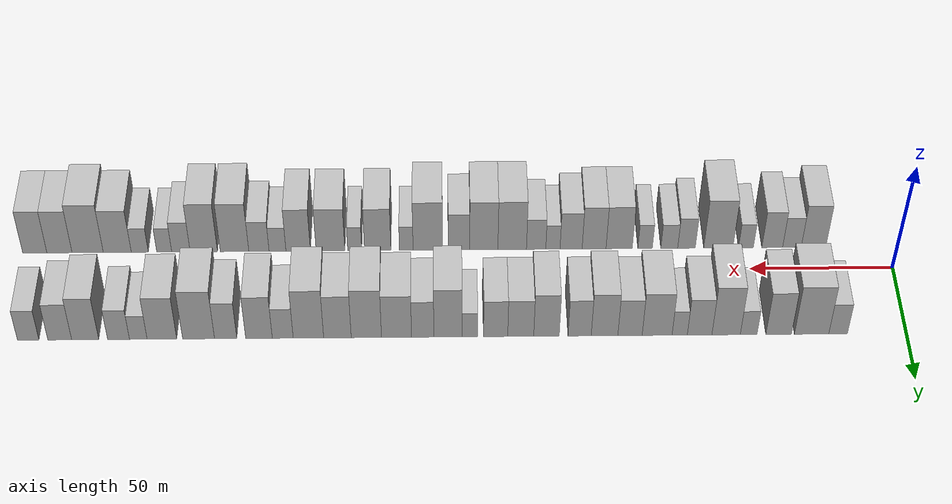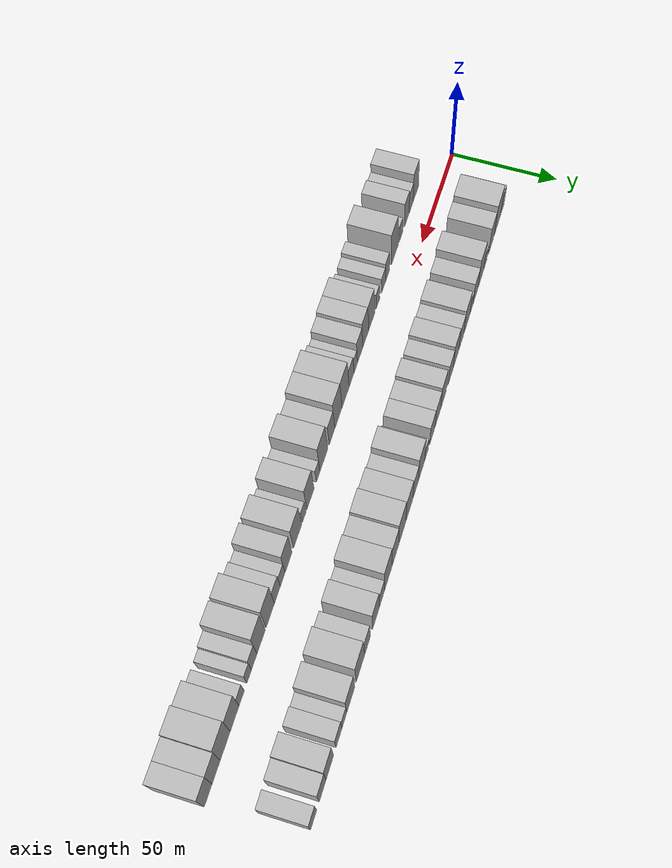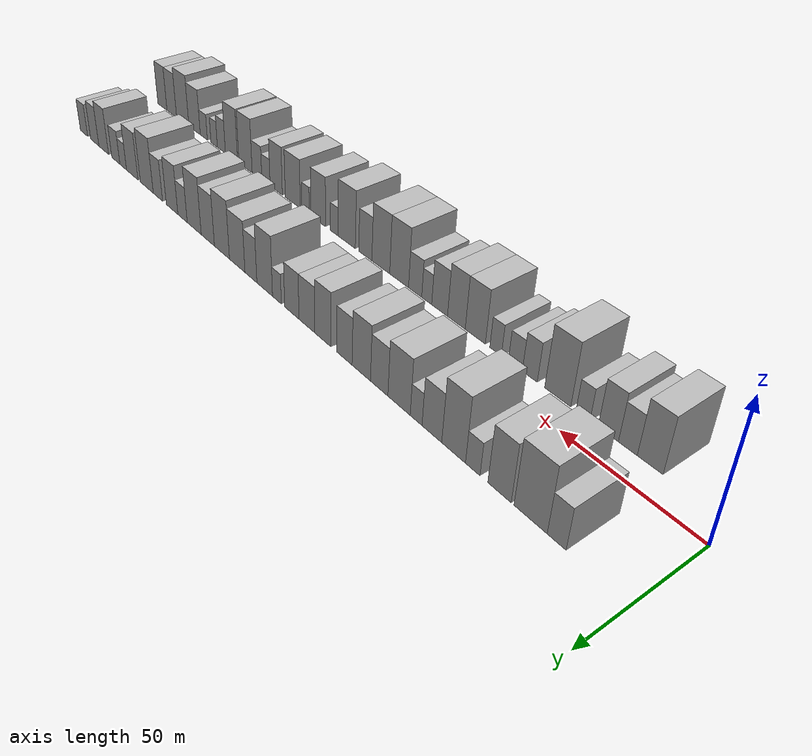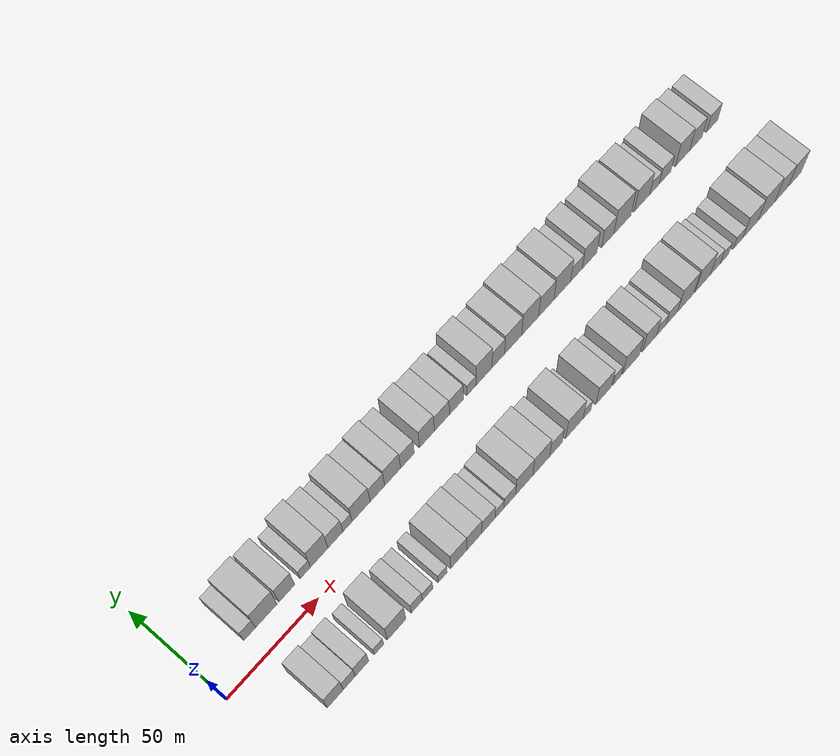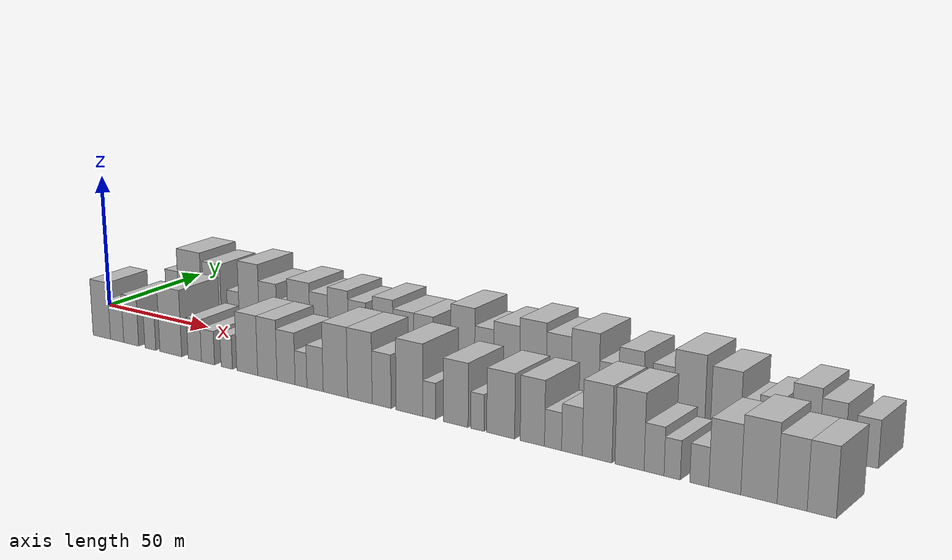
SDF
<sdf version="1.6">
 <world name="default">
  <scene>
   <sky><clouds><speed>12</speed></clouds></sky>
   <ambient>0.4 0.4 0.4 1</ambient>
   <background>0.7 0.7 0.7 1</background>
   <shadows>1</shadows>
  </scene>
  <gravity>0 0 -9.8066</gravity>
  <magnetic_field>6e-06 2.3e-05 -4.2e-05</magnetic_field>
  <physics default="0" name="default_physics" type="ode">
   <ode>
    <solver>
     <type>quick</type>
     <iters>10</iters>
     <sor>1.0</sor>
     <use_dynamic_moi_rescaling>0</use_dynamic_moi_rescaling>
    </solver>
    <constraints>
     <cfm>0</cfm>
     <erp>0.2</erp>
     <contact_max_correcting_vel>100</contact_max_correcting_vel>
     <contact_surface_layer>0.001</contact_surface_layer>
    </constraints>
   </ode>
   <max_step_size>0.004</max_step_size>
   <real_time_factor>1</real_time_factor>
   <real_time_update_rate>250</real_time_update_rate>
  </physics>
  <light name="sun" type="directional">
   <pose>0 0 10 0 0 0</pose>
   <diffuse>0.8 0.8 0.8 1</diffuse>
   <specular>0.2 0.2 0.2 1</specular>
   <attenuation>
    <range>1000</range>
    <constant>0.9</constant>
    <linear>0.01</linear>
    <quadratic>0.001</quadratic>
   </attenuation>
   <direction>-0.5 0.1 -0.9</direction>
  </light>
  <model name="building_1">
   <static>1</static>
   <pose>23.1805 20.0000 0 0.000000 0.000000 1.570796</pose>
   <link name="link">
    <pose>0 0 7.50 0 0 0</pose>
    <collision name="collision"><geometry><box><size>20.0000 6.3611 15.0000</size></box></geometry></collision>
    <visual name="visual">
     <cast_shadows>0</cast_shadows>
     <geometry><box><size>20.0000 6.3611 15.0000</size></box></geometry>
     <material>
      <script>
       <uri>model://HANNAS_wall/materials/scripts</uri>
       <uri>model://HANNAS_wall/materials/textures</uri>
       <name>vrc/HANNAS_wall</name>
      </script>
     </material>
    </visual>
   </link>
  </model>
  <model name="building_2">
   <static>1</static>
   <pose>32.2111 20.0000 0 0.000000 0.000000 1.570796</pose>
   <link name="link">
    <pose>0 0 12.00 0 0 0</pose>
    <collision name="collision"><geometry><box><size>20.0000 11.7001 24.0000</size></box></geometry></collision>
    <visual name="visual">
     <cast_shadows>0</cast_shadows>
     <geometry><box><size>20.0000 11.7001 24.0000</size></box></geometry>
     <material>
      <script>
       <uri>model://HANNAS_wall/materials/scripts</uri>
       <uri>model://HANNAS_wall/materials/textures</uri>
       <name>vrc/HANNAS_wall</name>
      </script>
     </material>
    </visual>
   </link>
  </model>
  <model name="building_3">
   <static>1</static>
   <pose>43.4229 20.0000 0 0.000000 0.000000 1.570796</pose>
   <link name="link">
    <pose>0 0 10.50 0 0 0</pose>
    <collision name="collision"><geometry><box><size>20.0000 8.7235 21.0000</size></box></geometry></collision>
    <visual name="visual">
     <cast_shadows>0</cast_shadows>
     <geometry><box><size>20.0000 8.7235 21.0000</size></box></geometry>
     <material>
      <script>
       <uri>model://HANNAS_wall/materials/scripts</uri>
       <uri>model://HANNAS_wall/materials/textures</uri>
       <name>vrc/HANNAS_wall</name>
      </script>
     </material>
    </visual>
   </link>
  </model>
  <model name="building_4">
   <static>1</static>
   <pose>53.6383 20.0000 0 0.000000 0.000000 1.570796</pose>
   <link name="link">
    <pose>0 0 6.00 0 0 0</pose>
    <collision name="collision"><geometry><box><size>20.0000 5.7074 12.0000</size></box></geometry></collision>
    <visual name="visual">
     <cast_shadows>0</cast_shadows>
     <geometry><box><size>20.0000 5.7074 12.0000</size></box></geometry>
     <material>
      <script>
       <uri>model://HANNAS_wall/materials/scripts</uri>
       <uri>model://HANNAS_wall/materials/textures</uri>
       <name>vrc/HANNAS_wall</name>
      </script>
     </material>
    </visual>
   </link>
  </model>
  <model name="building_5">
   <static>1</static>
   <pose>61.3309 20.0000 0 0.000000 0.000000 1.570796</pose>
   <link name="link">
    <pose>0 0 12.00 0 0 0</pose>
    <collision name="collision"><geometry><box><size>20.0000 9.6777 24.0000</size></box></geometry></collision>
    <visual name="visual">
     <cast_shadows>0</cast_shadows>
     <geometry><box><size>20.0000 9.6777 24.0000</size></box></geometry>
     <material>
      <script>
       <uri>model://HANNAS_wall/materials/scripts</uri>
       <uri>model://HANNAS_wall/materials/textures</uri>
       <name>vrc/HANNAS_wall</name>
      </script>
     </material>
    </visual>
   </link>
  </model>
  <model name="building_6">
   <static>1</static>
   <pose>70.3550 20.0000 0 0.000000 0.000000 1.570796</pose>
   <link name="link">
    <pose>0 0 9.00 0 0 0</pose>
    <collision name="collision"><geometry><box><size>20.0000 8.3705 18.0000</size></box></geometry></collision>
    <visual name="visual">
     <cast_shadows>0</cast_shadows>
     <geometry><box><size>20.0000 8.3705 18.0000</size></box></geometry>
     <material>
      <script>
       <uri>model://HANNAS_wall/materials/scripts</uri>
       <uri>model://HANNAS_wall/materials/textures</uri>
       <name>vrc/HANNAS_wall</name>
      </script>
     </material>
    </visual>
   </link>
  </model>
  <model name="building_7">
   <static>1</static>
   <pose>77.1355 20.0000 0 0.000000 0.000000 1.570796</pose>
   <link name="link">
    <pose>0 0 6.00 0 0 0</pose>
    <collision name="collision"><geometry><box><size>20.0000 5.1903 12.0000</size></box></geometry></collision>
    <visual name="visual">
     <cast_shadows>0</cast_shadows>
     <geometry><box><size>20.0000 5.1903 12.0000</size></box></geometry>
     <material>
      <script>
       <uri>model://HANNAS_wall/materials/scripts</uri>
       <uri>model://HANNAS_wall/materials/textures</uri>
       <name>vrc/HANNAS_wall</name>
      </script>
     </material>
    </visual>
   </link>
  </model>
  <model name="building_8">
   <static>1</static>
   <pose>84.8151 20.0000 0 0.000000 0.000000 1.570796</pose>
   <link name="link">
    <pose>0 0 10.50 0 0 0</pose>
    <collision name="collision"><geometry><box><size>20.0000 10.1690 21.0000</size></box></geometry></collision>
    <visual name="visual">
     <cast_shadows>0</cast_shadows>
     <geometry><box><size>20.0000 10.1690 21.0000</size></box></geometry>
     <material>
      <script>
       <uri>model://HANNAS_wall/materials/scripts</uri>
       <uri>model://HANNAS_wall/materials/textures</uri>
       <name>vrc/HANNAS_wall</name>
      </script>
     </material>
    </visual>
   </link>
  </model>
  <model name="building_9">
   <static>1</static>
   <pose>94.0329 20.0000 0 0.000000 0.000000 1.570796</pose>
   <link name="link">
    <pose>0 0 9.00 0 0 0</pose>
    <collision name="collision"><geometry><box><size>20.0000 8.2667 18.0000</size></box></geometry></collision>
    <visual name="visual">
     <cast_shadows>0</cast_shadows>
     <geometry><box><size>20.0000 8.2667 18.0000</size></box></geometry>
     <material>
      <script>
       <uri>model://HANNAS_wall/materials/scripts</uri>
       <uri>model://HANNAS_wall/materials/textures</uri>
       <name>vrc/HANNAS_wall</name>
      </script>
     </material>
    </visual>
   </link>
  </model>
  <model name="building_10">
   <static>1</static>
   <pose>102.6994 20.0000 0 0.000000 0.000000 1.570796</pose>
   <link name="link">
    <pose>0 0 10.50 0 0 0</pose>
    <collision name="collision"><geometry><box><size>20.0000 9.0662 21.0000</size></box></geometry></collision>
    <visual name="visual">
     <cast_shadows>0</cast_shadows>
     <geometry><box><size>20.0000 9.0662 21.0000</size></box></geometry>
     <material>
      <script>
       <uri>model://HANNAS_wall/materials/scripts</uri>
       <uri>model://HANNAS_wall/materials/textures</uri>
       <name>vrc/HANNAS_wall</name>
      </script>
     </material>
    </visual>
   </link>
  </model>
  <model name="building_11">
   <static>1</static>
   <pose>111.1695 20.0000 0 0.000000 0.000000 1.570796</pose>
   <link name="link">
    <pose>0 0 9.00 0 0 0</pose>
    <collision name="collision"><geometry><box><size>20.0000 7.8741 18.0000</size></box></geometry></collision>
    <visual name="visual">
     <cast_shadows>0</cast_shadows>
     <geometry><box><size>20.0000 7.8741 18.0000</size></box></geometry>
     <material>
      <script>
       <uri>model://HANNAS_wall/materials/scripts</uri>
       <uri>model://HANNAS_wall/materials/textures</uri>
       <name>vrc/HANNAS_wall</name>
      </script>
     </material>
    </visual>
   </link>
  </model>
  <model name="building_12">
   <static>1</static>
   <pose>122.4387 20.0000 0 0.000000 0.000000 1.570796</pose>
   <link name="link">
    <pose>0 0 10.50 0 0 0</pose>
    <collision name="collision"><geometry><box><size>20.0000 8.6643 21.0000</size></box></geometry></collision>
    <visual name="visual">
     <cast_shadows>0</cast_shadows>
     <geometry><box><size>20.0000 8.6643 21.0000</size></box></geometry>
     <material>
      <script>
       <uri>model://HANNAS_wall/materials/scripts</uri>
       <uri>model://HANNAS_wall/materials/textures</uri>
       <name>vrc/HANNAS_wall</name>
      </script>
     </material>
    </visual>
   </link>
  </model>
  <model name="building_13">
   <static>1</static>
   <pose>131.1931 20.0000 0 0.000000 0.000000 1.570796</pose>
   <link name="link">
    <pose>0 0 9.00 0 0 0</pose>
    <collision name="collision"><geometry><box><size>20.0000 8.8445 18.0000</size></box></geometry></collision>
    <visual name="visual">
     <cast_shadows>0</cast_shadows>
     <geometry><box><size>20.0000 8.8445 18.0000</size></box></geometry>
     <material>
      <script>
       <uri>model://HANNAS_wall/materials/scripts</uri>
       <uri>model://HANNAS_wall/materials/textures</uri>
       <name>vrc/HANNAS_wall</name>
      </script>
     </material>
    </visual>
   </link>
  </model>
  <model name="building_14">
   <static>1</static>
   <pose>139.7270 20.0000 0 0.000000 0.000000 1.570796</pose>
   <link name="link">
    <pose>0 0 9.00 0 0 0</pose>
    <collision name="collision"><geometry><box><size>20.0000 8.2233 18.0000</size></box></geometry></collision>
    <visual name="visual">
     <cast_shadows>0</cast_shadows>
     <geometry><box><size>20.0000 8.2233 18.0000</size></box></geometry>
     <material>
      <script>
       <uri>model://HANNAS_wall/materials/scripts</uri>
       <uri>model://HANNAS_wall/materials/textures</uri>
       <name>vrc/HANNAS_wall</name>
      </script>
     </material>
    </visual>
   </link>
  </model>
  <model name="building_15">
   <static>1</static>
   <pose>148.4612 20.0000 0 0.000000 0.000000 1.570796</pose>
   <link name="link">
    <pose>0 0 6.00 0 0 0</pose>
    <collision name="collision"><geometry><box><size>20.0000 5.2451 12.0000</size></box></geometry></collision>
    <visual name="visual">
     <cast_shadows>0</cast_shadows>
     <geometry><box><size>20.0000 5.2451 12.0000</size></box></geometry>
     <material>
      <script>
       <uri>model://HANNAS_wall/materials/scripts</uri>
       <uri>model://HANNAS_wall/materials/textures</uri>
       <name>vrc/HANNAS_wall</name>
      </script>
     </material>
    </visual>
   </link>
  </model>
  <model name="building_16">
   <static>1</static>
   <pose>155.8896 20.0000 0 0.000000 0.000000 1.570796</pose>
   <link name="link">
    <pose>0 0 12.00 0 0 0</pose>
    <collision name="collision"><geometry><box><size>20.0000 9.6118 24.0000</size></box></geometry></collision>
    <visual name="visual">
     <cast_shadows>0</cast_shadows>
     <geometry><box><size>20.0000 9.6118 24.0000</size></box></geometry>
     <material>
      <script>
       <uri>model://HANNAS_wall/materials/scripts</uri>
       <uri>model://HANNAS_wall/materials/textures</uri>
       <name>vrc/HANNAS_wall</name>
      </script>
     </material>
    </visual>
   </link>
  </model>
  <model name="building_17">
   <static>1</static>
   <pose>164.4881 20.0000 0 0.000000 0.000000 1.570796</pose>
   <link name="link">
    <pose>0 0 9.00 0 0 0</pose>
    <collision name="collision"><geometry><box><size>20.0000 7.5852 18.0000</size></box></geometry></collision>
    <visual name="visual">
     <cast_shadows>0</cast_shadows>
     <geometry><box><size>20.0000 7.5852 18.0000</size></box></geometry>
     <material>
      <script>
       <uri>model://HANNAS_wall/materials/scripts</uri>
       <uri>model://HANNAS_wall/materials/textures</uri>
       <name>vrc/HANNAS_wall</name>
      </script>
     </material>
    </visual>
   </link>
  </model>
  <model name="building_18">
   <static>1</static>
   <pose>173.3869 20.0000 0 0.000000 0.000000 1.570796</pose>
   <link name="link">
    <pose>0 0 10.50 0 0 0</pose>
    <collision name="collision"><geometry><box><size>20.0000 10.2125 21.0000</size></box></geometry></collision>
    <visual name="visual">
     <cast_shadows>0</cast_shadows>
     <geometry><box><size>20.0000 10.2125 21.0000</size></box></geometry>
     <material>
      <script>
       <uri>model://HANNAS_wall/materials/scripts</uri>
       <uri>model://HANNAS_wall/materials/textures</uri>
       <name>vrc/HANNAS_wall</name>
      </script>
     </material>
    </visual>
   </link>
  </model>
  <model name="building_19">
   <static>1</static>
   <pose>183.6347 20.0000 0 0.000000 0.000000 1.570796</pose>
   <link name="link">
    <pose>0 0 12.00 0 0 0</pose>
    <collision name="collision"><geometry><box><size>20.0000 10.2831 24.0000</size></box></geometry></collision>
    <visual name="visual">
     <cast_shadows>0</cast_shadows>
     <geometry><box><size>20.0000 10.2831 24.0000</size></box></geometry>
     <material>
      <script>
       <uri>model://HANNAS_wall/materials/scripts</uri>
       <uri>model://HANNAS_wall/materials/textures</uri>
       <name>vrc/HANNAS_wall</name>
      </script>
     </material>
    </visual>
   </link>
  </model>
  <model name="building_20">
   <static>1</static>
   <pose>193.4591 20.0000 0 0.000000 0.000000 1.570796</pose>
   <link name="link">
    <pose>0 0 10.50 0 0 0</pose>
    <collision name="collision"><geometry><box><size>20.0000 9.3656 21.0000</size></box></geometry></collision>
    <visual name="visual">
     <cast_shadows>0</cast_shadows>
     <geometry><box><size>20.0000 9.3656 21.0000</size></box></geometry>
     <material>
      <script>
       <uri>model://HANNAS_wall/materials/scripts</uri>
       <uri>model://HANNAS_wall/materials/textures</uri>
       <name>vrc/HANNAS_wall</name>
      </script>
     </material>
    </visual>
   </link>
  </model>
  <model name="building_21">
   <static>1</static>
   <pose>203.3100 20.0000 0 0.000000 0.000000 1.570796</pose>
   <link name="link">
    <pose>0 0 12.00 0 0 0</pose>
    <collision name="collision"><geometry><box><size>20.0000 10.3362 24.0000</size></box></geometry></collision>
    <visual name="visual">
     <cast_shadows>0</cast_shadows>
     <geometry><box><size>20.0000 10.3362 24.0000</size></box></geometry>
     <material>
      <script>
       <uri>model://HANNAS_wall/materials/scripts</uri>
       <uri>model://HANNAS_wall/materials/textures</uri>
       <name>vrc/HANNAS_wall</name>
      </script>
     </material>
    </visual>
   </link>
  </model>
  <model name="building_22">
   <static>1</static>
   <pose>212.0211 20.0000 0 0.000000 0.000000 1.570796</pose>
   <link name="link">
    <pose>0 0 7.50 0 0 0</pose>
    <collision name="collision"><geometry><box><size>20.0000 7.0859 15.0000</size></box></geometry></collision>
    <visual name="visual">
     <cast_shadows>0</cast_shadows>
     <geometry><box><size>20.0000 7.0859 15.0000</size></box></geometry>
     <material>
      <script>
       <uri>model://HANNAS_wall/materials/scripts</uri>
       <uri>model://HANNAS_wall/materials/textures</uri>
       <name>vrc/HANNAS_wall</name>
      </script>
     </material>
    </visual>
   </link>
  </model>
  <model name="building_23">
   <static>1</static>
   <pose>220.0758 20.0000 0 0.000000 0.000000 1.570796</pose>
   <link name="link">
    <pose>0 0 10.50 0 0 0</pose>
    <collision name="collision"><geometry><box><size>20.0000 9.0235 21.0000</size></box></geometry></collision>
    <visual name="visual">
     <cast_shadows>0</cast_shadows>
     <geometry><box><size>20.0000 9.0235 21.0000</size></box></geometry>
     <material>
      <script>
       <uri>model://HANNAS_wall/materials/scripts</uri>
       <uri>model://HANNAS_wall/materials/textures</uri>
       <name>vrc/HANNAS_wall</name>
      </script>
     </material>
    </visual>
   </link>
  </model>
  <model name="building_24">
   <static>1</static>
   <pose>231.3806 20.0000 0 0.000000 0.000000 1.570796</pose>
   <link name="link">
    <pose>0 0 9.00 0 0 0</pose>
    <collision name="collision"><geometry><box><size>20.0000 7.5862 18.0000</size></box></geometry></collision>
    <visual name="visual">
     <cast_shadows>0</cast_shadows>
     <geometry><box><size>20.0000 7.5862 18.0000</size></box></geometry>
     <material>
      <script>
       <uri>model://HANNAS_wall/materials/scripts</uri>
       <uri>model://HANNAS_wall/materials/textures</uri>
       <name>vrc/HANNAS_wall</name>
      </script>
     </material>
    </visual>
   </link>
  </model>
  <model name="building_25">
   <static>1</static>
   <pose>240.5744 20.0000 0 0.000000 0.000000 1.570796</pose>
   <link name="link">
    <pose>0 0 12.00 0 0 0</pose>
    <collision name="collision"><geometry><box><size>20.0000 10.8014 24.0000</size></box></geometry></collision>
    <visual name="visual">
     <cast_shadows>0</cast_shadows>
     <geometry><box><size>20.0000 10.8014 24.0000</size></box></geometry>
     <material>
      <script>
       <uri>model://HANNAS_wall/materials/scripts</uri>
       <uri>model://HANNAS_wall/materials/textures</uri>
       <name>vrc/HANNAS_wall</name>
      </script>
     </material>
    </visual>
   </link>
  </model>
  <model name="building_26">
   <static>1</static>
   <pose>252.9992 20.0000 0 0.000000 0.000000 1.570796</pose>
   <link name="link">
    <pose>0 0 10.50 0 0 0</pose>
    <collision name="collision"><geometry><box><size>20.0000 10.0482 21.0000</size></box></geometry></collision>
    <visual name="visual">
     <cast_shadows>0</cast_shadows>
     <geometry><box><size>20.0000 10.0482 21.0000</size></box></geometry>
     <material>
      <script>
       <uri>model://HANNAS_wall/materials/scripts</uri>
       <uri>model://HANNAS_wall/materials/textures</uri>
       <name>vrc/HANNAS_wall</name>
      </script>
     </material>
    </visual>
   </link>
  </model>
  <model name="building_27">
   <static>1</static>
   <pose>261.0181 20.0000 0 0.000000 0.000000 1.570796</pose>
   <link name="link">
    <pose>0 0 6.00 0 0 0</pose>
    <collision name="collision"><geometry><box><size>20.0000 5.9895 12.0000</size></box></geometry></collision>
    <visual name="visual">
     <cast_shadows>0</cast_shadows>
     <geometry><box><size>20.0000 5.9895 12.0000</size></box></geometry>
     <material>
      <script>
       <uri>model://HANNAS_wall/materials/scripts</uri>
       <uri>model://HANNAS_wall/materials/textures</uri>
       <name>vrc/HANNAS_wall</name>
      </script>
     </material>
    </visual>
   </link>
  </model>
  <model name="building_28">
   <static>1</static>
   <pose>267.7192 20.0000 0 0.000000 0.000000 1.570796</pose>
   <link name="link">
    <pose>0 0 7.50 0 0 0</pose>
    <collision name="collision"><geometry><box><size>20.0000 7.4128 15.0000</size></box></geometry></collision>
    <visual name="visual">
     <cast_shadows>0</cast_shadows>
     <geometry><box><size>20.0000 7.4128 15.0000</size></box></geometry>
     <material>
      <script>
       <uri>model://HANNAS_wall/materials/scripts</uri>
       <uri>model://HANNAS_wall/materials/textures</uri>
       <name>vrc/HANNAS_wall</name>
      </script>
     </material>
    </visual>
   </link>
  </model>
  <model name="building_29">
   <static>1</static>
   <pose>279.0179 20.0000 0 0.000000 0.000000 1.570796</pose>
   <link name="link">
    <pose>0 0 10.50 0 0 0</pose>
    <collision name="collision"><geometry><box><size>20.0000 9.1847 21.0000</size></box></geometry></collision>
    <visual name="visual">
     <cast_shadows>0</cast_shadows>
     <geometry><box><size>20.0000 9.1847 21.0000</size></box></geometry>
     <material>
      <script>
       <uri>model://HANNAS_wall/materials/scripts</uri>
       <uri>model://HANNAS_wall/materials/textures</uri>
       <name>vrc/HANNAS_wall</name>
      </script>
     </material>
    </visual>
   </link>
  </model>
  <model name="building_30">
   <static>1</static>
   <pose>287.6468 20.0000 0 0.000000 0.000000 1.570796</pose>
   <link name="link">
    <pose>0 0 9.00 0 0 0</pose>
    <collision name="collision"><geometry><box><size>20.0000 8.0731 18.0000</size></box></geometry></collision>
    <visual name="visual">
     <cast_shadows>0</cast_shadows>
     <geometry><box><size>20.0000 8.0731 18.0000</size></box></geometry>
     <material>
      <script>
       <uri>model://HANNAS_wall/materials/scripts</uri>
       <uri>model://HANNAS_wall/materials/textures</uri>
       <name>vrc/HANNAS_wall</name>
      </script>
     </material>
    </visual>
   </link>
  </model>
  <model name="building_31">
   <static>1</static>
   <pose>298.3227 20.0000 0 0.000000 0.000000 1.570796</pose>
   <link name="link">
    <pose>0 0 7.50 0 0 0</pose>
    <collision name="collision"><geometry><box><size>20.0000 7.2786 15.0000</size></box></geometry></collision>
    <visual name="visual">
     <cast_shadows>0</cast_shadows>
     <geometry><box><size>20.0000 7.2786 15.0000</size></box></geometry>
     <material>
      <script>
       <uri>model://HANNAS_wall/materials/scripts</uri>
       <uri>model://HANNAS_wall/materials/textures</uri>
       <name>vrc/HANNAS_wall</name>
      </script>
     </material>
    </visual>
   </link>
  </model>
  <model name="building_32">
   <static>1</static>
   <pose>26.3560 -20.0000 0 0.000000 0.000000 1.570796</pose>
   <link name="link">
    <pose>0 0 10.50 0 0 0</pose>
    <collision name="collision"><geometry><box><size>20.0000 8.7120 21.0000</size></box></geometry></collision>
    <visual name="visual">
     <cast_shadows>0</cast_shadows>
     <geometry><box><size>20.0000 8.7120 21.0000</size></box></geometry>
     <material>
      <script>
       <uri>model://HANNAS_wall/materials/scripts</uri>
       <uri>model://HANNAS_wall/materials/textures</uri>
       <name>vrc/HANNAS_wall</name>
      </script>
     </material>
    </visual>
   </link>
  </model>
  <model name="building_33">
   <static>1</static>
   <pose>34.0038 -20.0000 0 0.000000 0.000000 1.570796</pose>
   <link name="link">
    <pose>0 0 7.50 0 0 0</pose>
    <collision name="collision"><geometry><box><size>20.0000 6.5835 15.0000</size></box></geometry></collision>
    <visual name="visual">
     <cast_shadows>0</cast_shadows>
     <geometry><box><size>20.0000 6.5835 15.0000</size></box></geometry>
     <material>
      <script>
       <uri>model://HANNAS_wall/materials/scripts</uri>
       <uri>model://HANNAS_wall/materials/textures</uri>
       <name>vrc/HANNAS_wall</name>
      </script>
     </material>
    </visual>
   </link>
  </model>
  <model name="building_34">
   <static>1</static>
   <pose>40.9746 -20.0000 0 0.000000 0.000000 1.570796</pose>
   <link name="link">
    <pose>0 0 9.00 0 0 0</pose>
    <collision name="collision"><geometry><box><size>20.0000 7.3580 18.0000</size></box></geometry></collision>
    <visual name="visual">
     <cast_shadows>0</cast_shadows>
     <geometry><box><size>20.0000 7.3580 18.0000</size></box></geometry>
     <material>
      <script>
       <uri>model://HANNAS_wall/materials/scripts</uri>
       <uri>model://HANNAS_wall/materials/textures</uri>
       <name>vrc/HANNAS_wall</name>
      </script>
     </material>
    </visual>
   </link>
  </model>
  <model name="building_35">
   <static>1</static>
   <pose>50.2781 -20.0000 0 0.000000 0.000000 1.570796</pose>
   <link name="link">
    <pose>0 0 6.00 0 0 0</pose>
    <collision name="collision"><geometry><box><size>20.0000 5.2490 12.0000</size></box></geometry></collision>
    <visual name="visual">
     <cast_shadows>0</cast_shadows>
     <geometry><box><size>20.0000 5.2490 12.0000</size></box></geometry>
     <material>
      <script>
       <uri>model://HANNAS_wall/materials/scripts</uri>
       <uri>model://HANNAS_wall/materials/textures</uri>
       <name>vrc/HANNAS_wall</name>
      </script>
     </material>
    </visual>
   </link>
  </model>
  <model name="building_36">
   <static>1</static>
   <pose>60.0614 -20.0000 0 0.000000 0.000000 1.570796</pose>
   <link name="link">
    <pose>0 0 12.00 0 0 0</pose>
    <collision name="collision"><geometry><box><size>20.0000 10.3177 24.0000</size></box></geometry></collision>
    <visual name="visual">
     <cast_shadows>0</cast_shadows>
     <geometry><box><size>20.0000 10.3177 24.0000</size></box></geometry>
     <material>
      <script>
       <uri>model://HANNAS_wall/materials/scripts</uri>
       <uri>model://HANNAS_wall/materials/textures</uri>
       <name>vrc/HANNAS_wall</name>
      </script>
     </material>
    </visual>
   </link>
  </model>
  <model name="building_37">
   <static>1</static>
   <pose>71.3219 -20.0000 0 0.000000 0.000000 1.570796</pose>
   <link name="link">
    <pose>0 0 7.50 0 0 0</pose>
    <collision name="collision"><geometry><box><size>20.0000 6.2032 15.0000</size></box></geometry></collision>
    <visual name="visual">
     <cast_shadows>0</cast_shadows>
     <geometry><box><size>20.0000 6.2032 15.0000</size></box></geometry>
     <material>
      <script>
       <uri>model://HANNAS_wall/materials/scripts</uri>
       <uri>model://HANNAS_wall/materials/textures</uri>
       <name>vrc/HANNAS_wall</name>
      </script>
     </material>
    </visual>
   </link>
  </model>
  <model name="building_38">
   <static>1</static>
   <pose>77.4113 -20.0000 0 0.000000 0.000000 1.570796</pose>
   <link name="link">
    <pose>0 0 6.00 0 0 0</pose>
    <collision name="collision"><geometry><box><size>20.0000 5.9757 12.0000</size></box></geometry></collision>
    <visual name="visual">
     <cast_shadows>0</cast_shadows>
     <geometry><box><size>20.0000 5.9757 12.0000</size></box></geometry>
     <material>
      <script>
       <uri>model://HANNAS_wall/materials/scripts</uri>
       <uri>model://HANNAS_wall/materials/textures</uri>
       <name>vrc/HANNAS_wall</name>
      </script>
     </material>
    </visual>
   </link>
  </model>
  <model name="building_39">
   <static>1</static>
   <pose>85.9588 -20.0000 0 0.000000 0.000000 1.570796</pose>
   <link name="link">
    <pose>0 0 6.00 0 0 0</pose>
    <collision name="collision"><geometry><box><size>20.0000 5.1192 12.0000</size></box></geometry></collision>
    <visual name="visual">
     <cast_shadows>0</cast_shadows>
     <geometry><box><size>20.0000 5.1192 12.0000</size></box></geometry>
     <material>
      <script>
       <uri>model://HANNAS_wall/materials/scripts</uri>
       <uri>model://HANNAS_wall/materials/textures</uri>
       <name>vrc/HANNAS_wall</name>
      </script>
     </material>
    </visual>
   </link>
  </model>
  <model name="building_40">
   <static>1</static>
   <pose>95.1496 -20.0000 0 0.000000 0.000000 1.570796</pose>
   <link name="link">
    <pose>0 0 10.50 0 0 0</pose>
    <collision name="collision"><geometry><box><size>20.0000 9.2623 21.0000</size></box></geometry></collision>
    <visual name="visual">
     <cast_shadows>0</cast_shadows>
     <geometry><box><size>20.0000 9.2623 21.0000</size></box></geometry>
     <material>
      <script>
       <uri>model://HANNAS_wall/materials/scripts</uri>
       <uri>model://HANNAS_wall/materials/textures</uri>
       <name>vrc/HANNAS_wall</name>
      </script>
     </material>
    </visual>
   </link>
  </model>
  <model name="building_41">
   <static>1</static>
   <pose>104.0091 -20.0000 0 0.000000 0.000000 1.570796</pose>
   <link name="link">
    <pose>0 0 10.50 0 0 0</pose>
    <collision name="collision"><geometry><box><size>20.0000 8.4568 21.0000</size></box></geometry></collision>
    <visual name="visual">
     <cast_shadows>0</cast_shadows>
     <geometry><box><size>20.0000 8.4568 21.0000</size></box></geometry>
     <material>
      <script>
       <uri>model://HANNAS_wall/materials/scripts</uri>
       <uri>model://HANNAS_wall/materials/textures</uri>
       <name>vrc/HANNAS_wall</name>
      </script>
     </material>
    </visual>
   </link>
  </model>
  <model name="building_42">
   <static>1</static>
   <pose>112.1388 -20.0000 0 0.000000 0.000000 1.570796</pose>
   <link name="link">
    <pose>0 0 9.00 0 0 0</pose>
    <collision name="collision"><geometry><box><size>20.0000 7.8025 18.0000</size></box></geometry></collision>
    <visual name="visual">
     <cast_shadows>0</cast_shadows>
     <geometry><box><size>20.0000 7.8025 18.0000</size></box></geometry>
     <material>
      <script>
       <uri>model://HANNAS_wall/materials/scripts</uri>
       <uri>model://HANNAS_wall/materials/textures</uri>
       <name>vrc/HANNAS_wall</name>
      </script>
     </material>
    </visual>
   </link>
  </model>
  <model name="building_43">
   <static>1</static>
   <pose>118.5573 -20.0000 0 0.000000 0.000000 1.570796</pose>
   <link name="link">
    <pose>0 0 6.00 0 0 0</pose>
    <collision name="collision"><geometry><box><size>20.0000 5.0346 12.0000</size></box></geometry></collision>
    <visual name="visual">
     <cast_shadows>0</cast_shadows>
     <geometry><box><size>20.0000 5.0346 12.0000</size></box></geometry>
     <material>
      <script>
       <uri>model://HANNAS_wall/materials/scripts</uri>
       <uri>model://HANNAS_wall/materials/textures</uri>
       <name>vrc/HANNAS_wall</name>
      </script>
     </material>
    </visual>
   </link>
  </model>
  <model name="building_44">
   <static>1</static>
   <pose>124.4892 -20.0000 0 0.000000 0.000000 1.570796</pose>
   <link name="link">
    <pose>0 0 7.50 0 0 0</pose>
    <collision name="collision"><geometry><box><size>20.0000 6.8292 15.0000</size></box></geometry></collision>
    <visual name="visual">
     <cast_shadows>0</cast_shadows>
     <geometry><box><size>20.0000 6.8292 15.0000</size></box></geometry>
     <material>
      <script>
       <uri>model://HANNAS_wall/materials/scripts</uri>
       <uri>model://HANNAS_wall/materials/textures</uri>
       <name>vrc/HANNAS_wall</name>
      </script>
     </material>
    </visual>
   </link>
  </model>
  <model name="building_45">
   <static>1</static>
   <pose>132.9572 -20.0000 0 0.000000 0.000000 1.570796</pose>
   <link name="link">
    <pose>0 0 12.00 0 0 0</pose>
    <collision name="collision"><geometry><box><size>20.0000 10.1069 24.0000</size></box></geometry></collision>
    <visual name="visual">
     <cast_shadows>0</cast_shadows>
     <geometry><box><size>20.0000 10.1069 24.0000</size></box></geometry>
     <material>
      <script>
       <uri>model://HANNAS_wall/materials/scripts</uri>
       <uri>model://HANNAS_wall/materials/textures</uri>
       <name>vrc/HANNAS_wall</name>
      </script>
     </material>
    </visual>
   </link>
  </model>
  <model name="building_46">
   <static>1</static>
   <pose>142.9940 -20.0000 0 0.000000 0.000000 1.570796</pose>
   <link name="link">
    <pose>0 0 12.00 0 0 0</pose>
    <collision name="collision"><geometry><box><size>20.0000 9.9667 24.0000</size></box></geometry></collision>
    <visual name="visual">
     <cast_shadows>0</cast_shadows>
     <geometry><box><size>20.0000 9.9667 24.0000</size></box></geometry>
     <material>
      <script>
       <uri>model://HANNAS_wall/materials/scripts</uri>
       <uri>model://HANNAS_wall/materials/textures</uri>
       <name>vrc/HANNAS_wall</name>
      </script>
     </material>
    </visual>
   </link>
  </model>
  <model name="building_47">
   <static>1</static>
   <pose>151.7544 -20.0000 0 0.000000 0.000000 1.570796</pose>
   <link name="link">
    <pose>0 0 9.00 0 0 0</pose>
    <collision name="collision"><geometry><box><size>20.0000 7.5540 18.0000</size></box></geometry></collision>
    <visual name="visual">
     <cast_shadows>0</cast_shadows>
     <geometry><box><size>20.0000 7.5540 18.0000</size></box></geometry>
     <material>
      <script>
       <uri>model://HANNAS_wall/materials/scripts</uri>
       <uri>model://HANNAS_wall/materials/textures</uri>
       <name>vrc/HANNAS_wall</name>
      </script>
     </material>
    </visual>
   </link>
  </model>
  <model name="building_48">
   <static>1</static>
   <pose>162.7396 -20.0000 0 0.000000 0.000000 1.570796</pose>
   <link name="link">
    <pose>0 0 12.00 0 0 0</pose>
    <collision name="collision"><geometry><box><size>20.0000 10.4164 24.0000</size></box></geometry></collision>
    <visual name="visual">
     <cast_shadows>0</cast_shadows>
     <geometry><box><size>20.0000 10.4164 24.0000</size></box></geometry>
     <material>
      <script>
       <uri>model://HANNAS_wall/materials/scripts</uri>
       <uri>model://HANNAS_wall/materials/textures</uri>
       <name>vrc/HANNAS_wall</name>
      </script>
     </material>
    </visual>
   </link>
  </model>
  <model name="building_49">
   <static>1</static>
   <pose>170.3561 -20.0000 0 0.000000 0.000000 1.570796</pose>
   <link name="link">
    <pose>0 0 6.00 0 0 0</pose>
    <collision name="collision"><geometry><box><size>20.0000 4.8167 12.0000</size></box></geometry></collision>
    <visual name="visual">
     <cast_shadows>0</cast_shadows>
     <geometry><box><size>20.0000 4.8167 12.0000</size></box></geometry>
     <material>
      <script>
       <uri>model://HANNAS_wall/materials/scripts</uri>
       <uri>model://HANNAS_wall/materials/textures</uri>
       <name>vrc/HANNAS_wall</name>
      </script>
     </material>
    </visual>
   </link>
  </model>
  <model name="building_50">
   <static>1</static>
   <pose>180.4227 -20.0000 0 0.000000 0.000000 1.570796</pose>
   <link name="link">
    <pose>0 0 10.50 0 0 0</pose>
    <collision name="collision"><geometry><box><size>20.0000 9.3164 21.0000</size></box></geometry></collision>
    <visual name="visual">
     <cast_shadows>0</cast_shadows>
     <geometry><box><size>20.0000 9.3164 21.0000</size></box></geometry>
     <material>
      <script>
       <uri>model://HANNAS_wall/materials/scripts</uri>
       <uri>model://HANNAS_wall/materials/textures</uri>
       <name>vrc/HANNAS_wall</name>
      </script>
     </material>
    </visual>
   </link>
  </model>
  <model name="building_51">
   <static>1</static>
   <pose>188.5477 -20.0000 0 0.000000 0.000000 1.570796</pose>
   <link name="link">
    <pose>0 0 6.00 0 0 0</pose>
    <collision name="collision"><geometry><box><size>20.0000 4.9336 12.0000</size></box></geometry></collision>
    <visual name="visual">
     <cast_shadows>0</cast_shadows>
     <geometry><box><size>20.0000 4.9336 12.0000</size></box></geometry>
     <material>
      <script>
       <uri>model://HANNAS_wall/materials/scripts</uri>
       <uri>model://HANNAS_wall/materials/textures</uri>
       <name>vrc/HANNAS_wall</name>
      </script>
     </material>
    </visual>
   </link>
  </model>
  <model name="building_52">
   <static>1</static>
   <pose>197.0905 -20.0000 0 0.000000 0.000000 1.570796</pose>
   <link name="link">
    <pose>0 0 10.50 0 0 0</pose>
    <collision name="collision"><geometry><box><size>20.0000 10.1520 21.0000</size></box></geometry></collision>
    <visual name="visual">
     <cast_shadows>0</cast_shadows>
     <geometry><box><size>20.0000 10.1520 21.0000</size></box></geometry>
     <material>
      <script>
       <uri>model://HANNAS_wall/materials/scripts</uri>
       <uri>model://HANNAS_wall/materials/textures</uri>
       <name>vrc/HANNAS_wall</name>
      </script>
     </material>
    </visual>
   </link>
  </model>
  <model name="building_53">
   <static>1</static>
   <pose>208.4896 -20.0000 0 0.000000 0.000000 1.570796</pose>
   <link name="link">
    <pose>0 0 10.50 0 0 0</pose>
    <collision name="collision"><geometry><box><size>20.0000 8.6462 21.0000</size></box></geometry></collision>
    <visual name="visual">
     <cast_shadows>0</cast_shadows>
     <geometry><box><size>20.0000 8.6462 21.0000</size></box></geometry>
     <material>
      <script>
       <uri>model://HANNAS_wall/materials/scripts</uri>
       <uri>model://HANNAS_wall/materials/textures</uri>
       <name>vrc/HANNAS_wall</name>
      </script>
     </material>
    </visual>
   </link>
  </model>
  <model name="building_54">
   <static>1</static>
   <pose>215.7920 -20.0000 0 0.000000 0.000000 1.570796</pose>
   <link name="link">
    <pose>0 0 6.00 0 0 0</pose>
    <collision name="collision"><geometry><box><size>20.0000 5.9585 12.0000</size></box></geometry></collision>
    <visual name="visual">
     <cast_shadows>0</cast_shadows>
     <geometry><box><size>20.0000 5.9585 12.0000</size></box></geometry>
     <material>
      <script>
       <uri>model://HANNAS_wall/materials/scripts</uri>
       <uri>model://HANNAS_wall/materials/textures</uri>
       <name>vrc/HANNAS_wall</name>
      </script>
     </material>
    </visual>
   </link>
  </model>
  <model name="building_55">
   <static>1</static>
   <pose>222.3431 -20.0000 0 0.000000 0.000000 1.570796</pose>
   <link name="link">
    <pose>0 0 7.50 0 0 0</pose>
    <collision name="collision"><geometry><box><size>20.0000 7.1437 15.0000</size></box></geometry></collision>
    <visual name="visual">
     <cast_shadows>0</cast_shadows>
     <geometry><box><size>20.0000 7.1437 15.0000</size></box></geometry>
     <material>
      <script>
       <uri>model://HANNAS_wall/materials/scripts</uri>
       <uri>model://HANNAS_wall/materials/textures</uri>
       <name>vrc/HANNAS_wall</name>
      </script>
     </material>
    </visual>
   </link>
  </model>
  <model name="building_56">
   <static>1</static>
   <pose>230.9429 -20.0000 0 0.000000 0.000000 1.570796</pose>
   <link name="link">
    <pose>0 0 12.00 0 0 0</pose>
    <collision name="collision"><geometry><box><size>20.0000 10.0559 24.0000</size></box></geometry></collision>
    <visual name="visual">
     <cast_shadows>0</cast_shadows>
     <geometry><box><size>20.0000 10.0559 24.0000</size></box></geometry>
     <material>
      <script>
       <uri>model://HANNAS_wall/materials/scripts</uri>
       <uri>model://HANNAS_wall/materials/textures</uri>
       <name>vrc/HANNAS_wall</name>
      </script>
     </material>
    </visual>
   </link>
  </model>
  <model name="building_57">
   <static>1</static>
   <pose>241.7944 -20.0000 0 0.000000 0.000000 1.570796</pose>
   <link name="link">
    <pose>0 0 12.00 0 0 0</pose>
    <collision name="collision"><geometry><box><size>20.0000 9.6470 24.0000</size></box></geometry></collision>
    <visual name="visual">
     <cast_shadows>0</cast_shadows>
     <geometry><box><size>20.0000 9.6470 24.0000</size></box></geometry>
     <material>
      <script>
       <uri>model://HANNAS_wall/materials/scripts</uri>
       <uri>model://HANNAS_wall/materials/textures</uri>
       <name>vrc/HANNAS_wall</name>
      </script>
     </material>
    </visual>
   </link>
  </model>
  <model name="building_58">
   <static>1</static>
   <pose>249.8636 -20.0000 0 0.000000 0.000000 1.570796</pose>
   <link name="link">
    <pose>0 0 7.50 0 0 0</pose>
    <collision name="collision"><geometry><box><size>20.0000 6.4913 15.0000</size></box></geometry></collision>
    <visual name="visual">
     <cast_shadows>0</cast_shadows>
     <geometry><box><size>20.0000 6.4913 15.0000</size></box></geometry>
     <material>
      <script>
       <uri>model://HANNAS_wall/materials/scripts</uri>
       <uri>model://HANNAS_wall/materials/textures</uri>
       <name>vrc/HANNAS_wall</name>
      </script>
     </material>
    </visual>
   </link>
  </model>
  <model name="building_59">
   <static>1</static>
   <pose>255.7365 -20.0000 0 0.000000 0.000000 1.570796</pose>
   <link name="link">
    <pose>0 0 6.00 0 0 0</pose>
    <collision name="collision"><geometry><box><size>20.0000 5.2545 12.0000</size></box></geometry></collision>
    <visual name="visual">
     <cast_shadows>0</cast_shadows>
     <geometry><box><size>20.0000 5.2545 12.0000</size></box></geometry>
     <material>
      <script>
       <uri>model://HANNAS_wall/materials/scripts</uri>
       <uri>model://HANNAS_wall/materials/textures</uri>
       <name>vrc/HANNAS_wall</name>
      </script>
     </material>
    </visual>
   </link>
  </model>
  <model name="building_60">
   <static>1</static>
   <pose>264.3613 -20.0000 0 0.000000 0.000000 1.570796</pose>
   <link name="link">
    <pose>0 0 6.00 0 0 0</pose>
    <collision name="collision"><geometry><box><size>20.0000 5.9952 12.0000</size></box></geometry></collision>
    <visual name="visual">
     <cast_shadows>0</cast_shadows>
     <geometry><box><size>20.0000 5.9952 12.0000</size></box></geometry>
     <material>
      <script>
       <uri>model://HANNAS_wall/materials/scripts</uri>
       <uri>model://HANNAS_wall/materials/textures</uri>
       <name>vrc/HANNAS_wall</name>
      </script>
     </material>
    </visual>
   </link>
  </model>
  <model name="building_61">
   <static>1</static>
   <pose>272.2958 -20.0000 0 0.000000 0.000000 1.570796</pose>
   <link name="link">
    <pose>0 0 10.50 0 0 0</pose>
    <collision name="collision"><geometry><box><size>20.0000 9.8737 21.0000</size></box></geometry></collision>
    <visual name="visual">
     <cast_shadows>0</cast_shadows>
     <geometry><box><size>20.0000 9.8737 21.0000</size></box></geometry>
     <material>
      <script>
       <uri>model://HANNAS_wall/materials/scripts</uri>
       <uri>model://HANNAS_wall/materials/textures</uri>
       <name>vrc/HANNAS_wall</name>
      </script>
     </material>
    </visual>
   </link>
  </model>
  <model name="building_62">
   <static>1</static>
   <pose>282.7330 -20.0000 0 0.000000 0.000000 1.570796</pose>
   <link name="link">
    <pose>0 0 12.00 0 0 0</pose>
    <collision name="collision"><geometry><box><size>20.0000 11.0007 24.0000</size></box></geometry></collision>
    <visual name="visual">
     <cast_shadows>0</cast_shadows>
     <geometry><box><size>20.0000 11.0007 24.0000</size></box></geometry>
     <material>
      <script>
       <uri>model://HANNAS_wall/materials/scripts</uri>
       <uri>model://HANNAS_wall/materials/textures</uri>
       <name>vrc/HANNAS_wall</name>
      </script>
     </material>
    </visual>
   </link>
  </model>
  <model name="building_63">
   <static>1</static>
   <pose>292.6675 -20.0000 0 0.000000 0.000000 1.570796</pose>
   <link name="link">
    <pose>0 0 10.50 0 0 0</pose>
    <collision name="collision"><geometry><box><size>20.0000 8.8683 21.0000</size></box></geometry></collision>
    <visual name="visual">
     <cast_shadows>0</cast_shadows>
     <geometry><box><size>20.0000 8.8683 21.0000</size></box></geometry>
     <material>
      <script>
       <uri>model://HANNAS_wall/materials/scripts</uri>
       <uri>model://HANNAS_wall/materials/textures</uri>
       <name>vrc/HANNAS_wall</name>
      </script>
     </material>
    </visual>
   </link>
  </model>
  <model name="building_64">
   <static>1</static>
   <pose>301.3552 -20.0000 0 0.000000 0.000000 1.570796</pose>
   <link name="link">
    <pose>0 0 10.50 0 0 0</pose>
    <collision name="collision"><geometry><box><size>20.0000 8.5072 21.0000</size></box></geometry></collision>
    <visual name="visual">
     <cast_shadows>0</cast_shadows>
     <geometry><box><size>20.0000 8.5072 21.0000</size></box></geometry>
     <material>
      <script>
       <uri>model://HANNAS_wall/materials/scripts</uri>
       <uri>model://HANNAS_wall/materials/textures</uri>
       <name>vrc/HANNAS_wall</name>
      </script>
     </material>
    </visual>
   </link>
  </model>
 </world>
</sdf>
